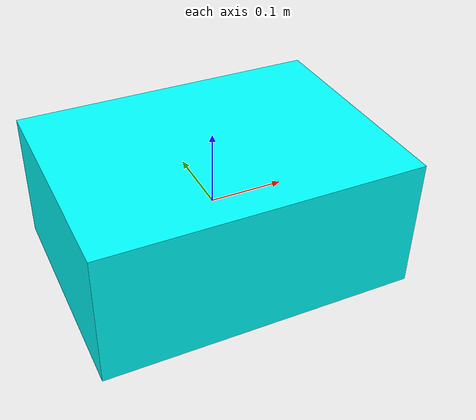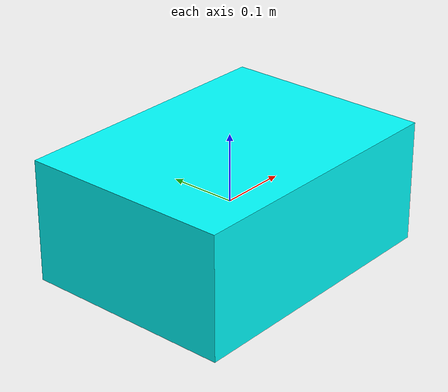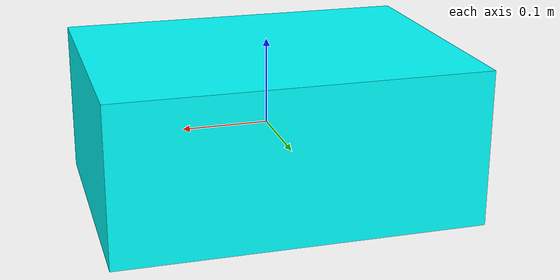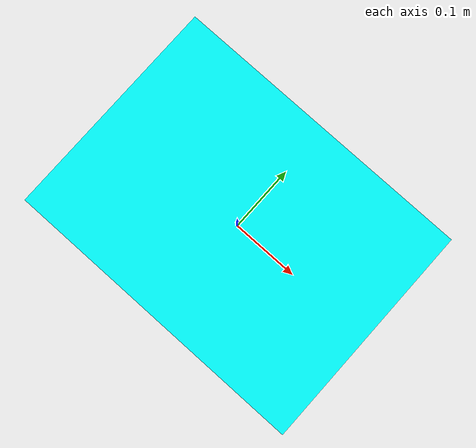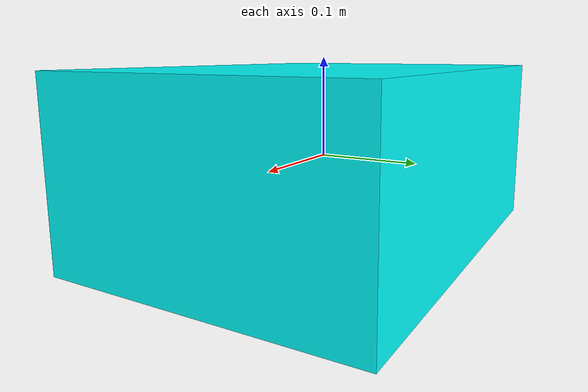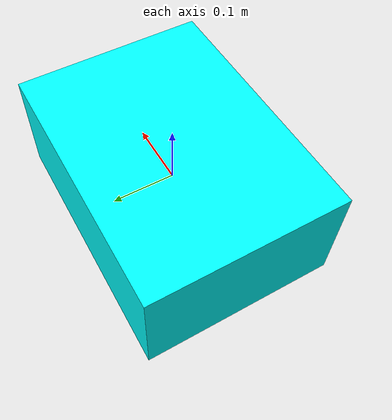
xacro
<?xml version="1.0"?>
<robot name="myrobot"
  xmlns:xacro="http://ros.org/wiki/xacro">

  <!-- Define robot constants -->
  <xacro:property name="base_width" value="0.31"/>
  <xacro:property name="base_length" value="0.42"/>
  <xacro:property name="base_height" value="0.18"/>

  <!-- Robot Base -->
  <link name="base_link">
    <visual>
      <geometry>
        <box size="${base_length} ${base_width} ${base_height}"/>
      </geometry>
      <material name="Cyan">
        <color rgba="0 1.0 1.0 1.0"/>
      </material>
    </visual>
</link>
</robot>
